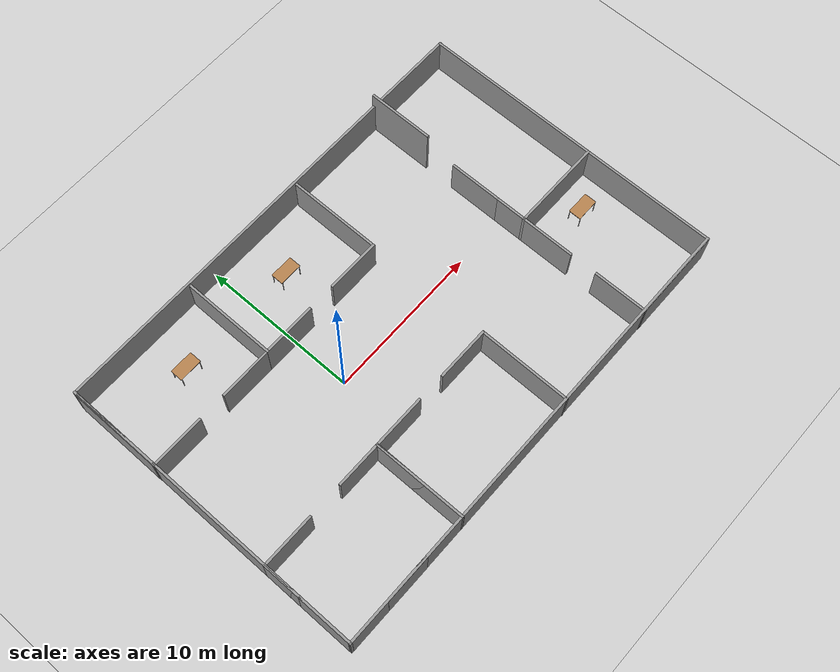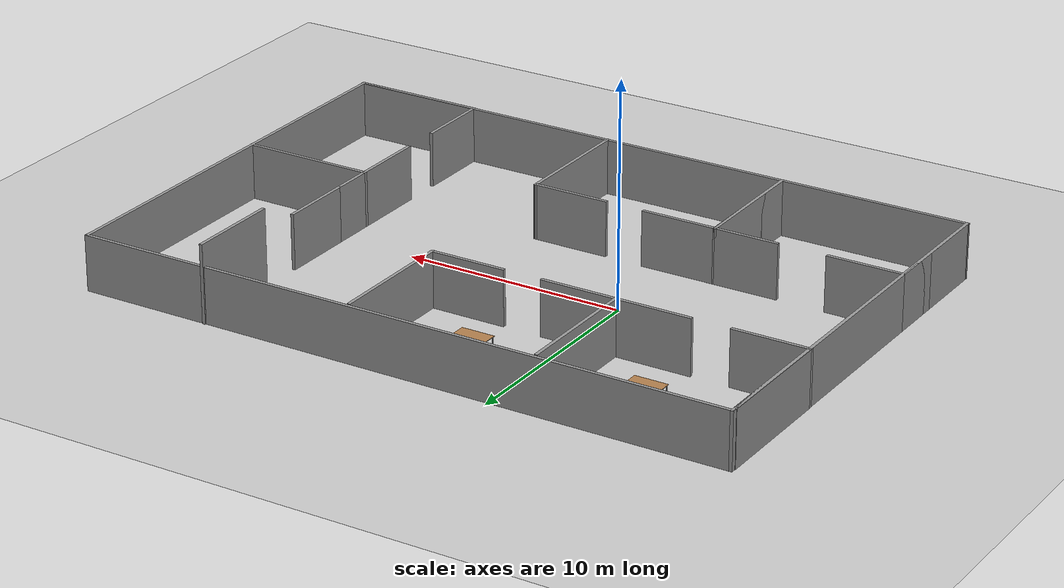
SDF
<sdf version="1.6">
 <world name="default">
  <light name="sun" type="directional">
   <pose>0 0 10 0 -0 0</pose>
   <diffuse>0.8 0.8 0.8 1</diffuse>
   <specular>0.2 0.2 0.2 1</specular>
   <attenuation>
    <range>1000</range>
    <constant>0.9</constant>
    <linear>0.01</linear>
    <quadratic>0.001</quadratic>
   </attenuation>
   <direction>-0.5 0.1 -0.9</direction>
  </light>
  <model name="ground_plane">
   <static>1</static>
   <link name="link">
    <collision name="collision">
     <geometry><plane><normal>0 0 1</normal><size>100 100</size></plane></geometry>
     <surface>
      <contact><collide_bitmask>65535</collide_bitmask></contact>
      <friction><ode><mu>100</mu><mu2>50</mu2></ode></friction>
     </surface>
    </collision>
    <visual name="visual">
     <cast_shadows>0</cast_shadows>
     <geometry><plane><normal>0 0 1</normal><size>100 100</size></plane></geometry>
     <material>
      <script><uri>file://media/materials/scripts/gazebo.material</uri><name>Gazebo/Grey</name></script>
     </material>
    </visual>
   </link>
  </model>
  <gravity>0 0 -9.8</gravity>
  <magnetic_field>6e-06 2.3e-05 -4.2e-05</magnetic_field>
  <atmosphere type="adiabatic"/>
  <physics name="default_physics" default="0" type="ode">
   <max_step_size>0.001</max_step_size>
   <real_time_factor>1</real_time_factor>
   <real_time_update_rate>1000</real_time_update_rate>
  </physics>
  <scene><ambient>0.4 0.4 0.4 1</ambient><background>0.7 0.7 0.7 1</background><shadows>1</shadows></scene>
  <audio><device>default</device></audio>
  <spherical_coordinates>
   <surface_model>EARTH_WGS84</surface_model>
   <latitude_deg>0</latitude_deg>
   <longitude_deg>0</longitude_deg>
   <elevation>0</elevation>
   <heading_deg>0</heading_deg>
  </spherical_coordinates>
  <model name="test">
   <pose>4.39989 -0.195401 0 0 -0 0</pose>
   <link name="Wall_0">
    <collision name="Wall_0_Collision">
     <geometry><box><size>30 0.15 2.5</size></box></geometry>
     <pose>0 0 1.25 0 -0 0</pose>
    </collision>
    <visual name="Wall_0_Visual">
     <pose>0 0 1.25 0 -0 0</pose>
     <geometry><box><size>30 0.15 2.5</size></box></geometry>
     <material>
      <script><uri>file://media/materials/scripts/gazebo.material</uri><name>Gazebo/Grey</name></script>
      <ambient>1 1 1 1</ambient>
     </material>
     <meta><layer>0</layer></meta>
    </visual>
    <pose>0 -9.95253 0 0 -0 0.001541</pose>
   </link>
   <link name="Wall_11">
    <collision name="Wall_11_Collision">
     <geometry><box><size>6 0.15 2.5</size></box></geometry>
     <pose>0 0 1.25 0 -0 0</pose>
    </collision>
    <visual name="Wall_11_Visual">
     <pose>0 0 1.25 0 -0 0</pose>
     <geometry><box><size>6 0.15 2.5</size></box></geometry>
     <material>
      <script><uri>file://media/materials/scripts/gazebo.material</uri><name>Gazebo/Grey</name></script>
      <ambient>1 1 1 1</ambient>
     </material>
     <meta><layer>0</layer></meta>
    </visual>
    <pose>-14.925 -7.05053 0 0 -0 1.5708</pose>
   </link>
   <link name="Wall_12">
    <collision name="Wall_12_Collision">
     <geometry><box><size>3.5 0.15 2.5</size></box></geometry>
     <pose>0 0 1.25 0 -0 0</pose>
    </collision>
    <visual name="Wall_12_Visual">
     <pose>0 0 1.25 0 -0 0</pose>
     <geometry><box><size>3.5 0.15 2.5</size></box></geometry>
     <material>
      <script><uri>file://media/materials/scripts/gazebo.material</uri><name>Gazebo/Grey</name></script>
      <ambient>1 1 1 1</ambient>
     </material>
     <meta><layer>0</layer></meta>
    </visual>
    <pose>-13.25 -4.12553 0 0 -0 0</pose>
   </link>
   <link name="Wall_14">
    <collision name="Wall_14_Collision">
     <geometry><box><size>3 0.15 2.5</size></box></geometry>
     <pose>0 0 1.25 0 -0 0</pose>
    </collision>
    <visual name="Wall_14_Visual">
     <pose>0 0 1.25 0 -0 0</pose>
     <geometry><box><size>3 0.15 2.5</size></box></geometry>
     <material>
      <script><uri>file://media/materials/scripts/gazebo.material</uri><name>Gazebo/Grey</name></script>
      <ambient>1 1 1 1</ambient>
     </material>
     <meta><layer>0</layer></meta>
    </visual>
    <pose>-10.65 -9.97553 0 0 -0 0</pose>
   </link>
   <link name="Wall_16">
    <collision name="Wall_16_Collision">
     <geometry><box><size>3 0.15 2.5</size></box></geometry>
     <pose>0 0 1.25 0 -0 0</pose>
    </collision>
    <visual name="Wall_16_Visual">
     <pose>0 0 1.25 0 -0 0</pose>
     <geometry><box><size>3 0.15 2.5</size></box></geometry>
     <material>
      <script><uri>file://media/materials/scripts/gazebo.material</uri><name>Gazebo/Grey</name></script>
      <ambient>1 1 1 1</ambient>
     </material>
     <meta><layer>0</layer></meta>
    </visual>
    <pose>-7.8263 -4.12553 0 0 -0 0</pose>
   </link>
   <link name="Wall_17">
    <collision name="Wall_17_Collision">
     <geometry><box><size>6.00006 0.15 2.5</size></box></geometry>
     <pose>0 0 1.25 0 -0 0</pose>
    </collision>
    <visual name="Wall_17_Visual">
     <pose>0 0 1.25 0 -0 0</pose>
     <geometry><box><size>6.00006 0.15 2.5</size></box></geometry>
     <material>
      <script><uri>file://media/materials/scripts/gazebo.material</uri><name>Gazebo/Grey</name></script>
      <ambient>1 1 1 1</ambient>
     </material>
     <meta><layer>0</layer></meta>
    </visual>
    <pose>-6.38815 -7.05053 0 0 -0 -1.5663</pose>
   </link>
   <link name="Wall_18">
    <collision name="Wall_18_Collision">
     <geometry><box><size>6.00006 0.15 2.5</size></box></geometry>
     <pose>0 0 1.25 0 -0 0</pose>
    </collision>
    <visual name="Wall_18_Visual">
     <pose>0 0 1.25 0 -0 0</pose>
     <geometry><box><size>6.00006 0.15 2.5</size></box></geometry>
     <material>
      <script><uri>file://media/materials/scripts/gazebo.material</uri><name>Gazebo/Grey</name></script>
      <ambient>1 1 1 1</ambient>
     </material>
     <meta><layer>0</layer></meta>
    </visual>
    <pose>-6.38815 -7.05053 0 0 -0 1.57529</pose>
   </link>
   <link name="Wall_19">
    <collision name="Wall_19_Collision">
     <geometry><box><size>3.5 0.15 2.5</size></box></geometry>
     <pose>0 0 1.25 0 -0 0</pose>
    </collision>
    <visual name="Wall_19_Visual">
     <pose>0 0 1.25 0 -0 0</pose>
     <geometry><box><size>3.5 0.15 2.5</size></box></geometry>
     <material>
      <script><uri>file://media/materials/scripts/gazebo.material</uri><name>Gazebo/Grey</name></script>
      <ambient>1 1 1 1</ambient>
     </material>
     <meta><layer>0</layer></meta>
    </visual>
    <pose>-4.7263 -4.12553 0 0 -0 0</pose>
   </link>
   <link name="Wall_2">
    <collision name="Wall_2_Collision">
     <geometry><box><size>20.0465 0.15 2.5</size></box></geometry>
     <pose>0 0 1.25 0 -0 0</pose>
    </collision>
    <visual name="Wall_2_Visual">
     <pose>0 0 1.25 0 -0 0</pose>
     <geometry><box><size>20.0465 0.15 2.5</size></box></geometry>
     <material>
      <script><uri>file://media/materials/scripts/gazebo.material</uri><name>Gazebo/Grey</name></script>
      <ambient>1 1 1 1</ambient>
     </material>
     <meta><layer>0</layer></meta>
    </visual>
    <pose>-14.925 -0.027533 0 0 -0 1.5708</pose>
   </link>
   <link name="Wall_23">
    <collision name="Wall_23_Collision">
     <geometry><box><size>3.5 0.15 2.5</size></box></geometry>
     <pose>0 0 1.25 0 -0 0</pose>
    </collision>
    <visual name="Wall_23_Visual">
     <pose>0 0 1.25 0 -0 0</pose>
     <geometry><box><size>3.5 0.15 2.5</size></box></geometry>
     <material>
      <script><uri>file://media/materials/scripts/gazebo.material</uri><name>Gazebo/Grey</name></script>
      <ambient>1 1 1 1</ambient>
     </material>
     <meta><layer>0</layer></meta>
    </visual>
    <pose>0.5 -4.15183 0 0 -0 0</pose>
   </link>
   <link name="Wall_24">
    <collision name="Wall_24_Collision">
     <geometry><box><size>5.97394 0.15 2.5</size></box></geometry>
     <pose>0 0 1.25 0 -0 0</pose>
    </collision>
    <visual name="Wall_24_Visual">
     <pose>0 0 1.25 0 -0 0</pose>
     <geometry><box><size>5.97394 0.15 2.5</size></box></geometry>
     <material>
      <script><uri>file://media/materials/scripts/gazebo.material</uri><name>Gazebo/Grey</name></script>
      <ambient>1 1 1 1</ambient>
     </material>
     <meta><layer>0</layer></meta>
    </visual>
    <pose>2.18815 -7.06368 0 0 -0 -1.57531</pose>
   </link>
   <link name="Wall_26">
    <collision name="Wall_26_Collision">
     <geometry><box><size>6 0.15 2.5</size></box></geometry>
     <pose>0 0 1.25 0 -0 0</pose>
    </collision>
    <visual name="Wall_26_Visual">
     <pose>0 0 1.25 0 -0 0</pose>
     <geometry><box><size>6 0.15 2.5</size></box></geometry>
     <material>
      <script><uri>file://media/materials/scripts/gazebo.material</uri><name>Gazebo/Grey</name></script>
      <ambient>1 1 1 1</ambient>
     </material>
     <meta><layer>0</layer></meta>
    </visual>
    <pose>11.9832 -9.96868 0 0 -0 3.14159</pose>
   </link>
   <link name="Wall_27">
    <collision name="Wall_27_Collision">
     <geometry><box><size>3.5 0.15 2.5</size></box></geometry>
     <pose>0 0 1.25 0 -0 0</pose>
    </collision>
    <visual name="Wall_27_Visual">
     <pose>0 0 1.25 0 -0 0</pose>
     <geometry><box><size>3.5 0.15 2.5</size></box></geometry>
     <material>
      <script><uri>file://media/materials/scripts/gazebo.material</uri><name>Gazebo/Grey</name></script>
      <ambient>1 1 1 1</ambient>
     </material>
     <meta><layer>0</layer></meta>
    </visual>
    <pose>9.05823 -8.29368 0 0 -0 1.5708</pose>
   </link>
   <link name="Wall_29">
    <collision name="Wall_29_Collision">
     <geometry><box><size>3.5 0.15 2.5</size></box></geometry>
     <pose>0 0 1.25 0 -0 0</pose>
    </collision>
    <visual name="Wall_29_Visual">
     <pose>0 0 1.25 0 -0 0</pose>
     <geometry><box><size>3.5 0.15 2.5</size></box></geometry>
     <material>
      <script><uri>file://media/materials/scripts/gazebo.material</uri><name>Gazebo/Grey</name></script>
      <ambient>1 1 1 1</ambient>
     </material>
     <meta><layer>0</layer></meta>
    </visual>
    <pose>9.05823 -3.09368 0 0 -0 1.5708</pose>
   </link>
   <link name="Wall_30">
    <collision name="Wall_30_Collision">
     <geometry><box><size>6 0.15 2.5</size></box></geometry>
     <pose>0 0 1.25 0 -0 0</pose>
    </collision>
    <visual name="Wall_30_Visual">
     <pose>0 0 1.25 0 -0 0</pose>
     <geometry><box><size>6 0.15 2.5</size></box></geometry>
     <material>
      <script><uri>file://media/materials/scripts/gazebo.material</uri><name>Gazebo/Grey</name></script>
      <ambient>1 1 1 1</ambient>
     </material>
     <meta><layer>0</layer></meta>
    </visual>
    <pose>11.9832 -1.41868 0 0 -0 0</pose>
   </link>
   <link name="Wall_32">
    <collision name="Wall_32_Collision">
     <geometry><box><size>2 0.15 2.5</size></box></geometry>
     <pose>0 0 1.25 0 -0 0</pose>
    </collision>
    <visual name="Wall_32_Visual">
     <pose>0 0 1.25 0 -0 0</pose>
     <geometry><box><size>2 0.15 2.5</size></box></geometry>
     <material>
      <script><uri>file://media/materials/scripts/gazebo.material</uri><name>Gazebo/Grey</name></script>
      <ambient>1 1 1 1</ambient>
     </material>
     <meta><layer>0</layer></meta>
    </visual>
    <pose>9.05823 -0.493677 0 0 -0 1.5708</pose>
   </link>
   <link name="Wall_34">
    <collision name="Wall_34_Collision">
     <geometry><box><size>3.5 0.15 2.5</size></box></geometry>
     <pose>0 0 1.25 0 -0 0</pose>
    </collision>
    <visual name="Wall_34_Visual">
     <pose>0 0 1.25 0 -0 0</pose>
     <geometry><box><size>3.5 0.15 2.5</size></box></geometry>
     <material>
      <script><uri>file://media/materials/scripts/gazebo.material</uri><name>Gazebo/Grey</name></script>
      <ambient>1 1 1 1</ambient>
     </material>
     <meta><layer>0</layer></meta>
    </visual>
    <pose>9.05823 2.10632 0 0 -0 1.5708</pose>
   </link>
   <link name="Wall_39">
    <collision name="Wall_39_Collision">
     <geometry><box><size>4.25 0.15 3.5</size></box></geometry>
     <pose>0 0 1.75 0 -0 0</pose>
    </collision>
    <visual name="Wall_39_Visual">
     <pose>0 0 1.75 0 -0 0</pose>
     <geometry><box><size>4.25 0.15 3.5</size></box></geometry>
     <material>
      <script><uri>file://media/materials/scripts/gazebo.material</uri><name>Gazebo/Grey</name></script>
      <ambient>1 1 1 1</ambient>
     </material>
     <meta><layer>0</layer></meta>
    </visual>
    <pose>9.05862 7.92596 0 0 -0 1.5708</pose>
   </link>
   <link name="Wall_4">
    <collision name="Wall_4_Collision">
     <geometry><box><size>30 0.15 2.5</size></box></geometry>
     <pose>0 0 1.25 0 -0 0</pose>
    </collision>
    <visual name="Wall_4_Visual">
     <pose>0 0 1.25 0 -0 0</pose>
     <geometry><box><size>30 0.15 2.5</size></box></geometry>
     <material>
      <script><uri>file://media/materials/scripts/gazebo.material</uri><name>Gazebo/Grey</name></script>
      <ambient>1 1 1 1</ambient>
     </material>
     <meta><layer>0</layer></meta>
    </visual>
    <pose>0 9.92047 0 0 -0 0</pose>
   </link>
   <link name="Wall_41">
    <collision name="Wall_41_Collision">
     <geometry><box><size>6 0.15 2.5</size></box></geometry>
     <pose>0 0 1.25 0 -0 0</pose>
    </collision>
    <visual name="Wall_41_Visual">
     <pose>0 0 1.25 0 -0 0</pose>
     <geometry><box><size>6 0.15 2.5</size></box></geometry>
     <material>
      <script><uri>file://media/materials/scripts/gazebo.material</uri><name>Gazebo/Grey</name></script>
      <ambient>1 1 1 1</ambient>
     </material>
     <meta><layer>0</layer></meta>
    </visual>
    <pose>-14.925 6.99547 0 0 -0 -1.5708</pose>
   </link>
   <link name="Wall_6">
    <collision name="Wall_6_Collision">
     <geometry><box><size>20 0.15 2.5</size></box></geometry>
     <pose>0 0 1.25 0 -0 0</pose>
    </collision>
    <visual name="Wall_6_Visual">
     <pose>0 0 1.25 0 -0 0</pose>
     <geometry><box><size>20 0.15 2.5</size></box></geometry>
     <material>
      <script><uri>file://media/materials/scripts/gazebo.material</uri><name>Gazebo/Grey</name></script>
      <ambient>1 1 1 1</ambient>
     </material>
     <meta><layer>0</layer></meta>
    </visual>
    <pose>14.9082 -0.043677 0 0 -0 1.5708</pose>
   </link>
   <link name="Wall_9">
    <collision name="Wall_9_Collision">
     <geometry><box><size>2.45446 0.15 2.5</size></box></geometry>
     <pose>0 0 1.25 0 -0 0</pose>
    </collision>
    <visual name="Wall_9_Visual">
     <pose>0 0 1.25 0 -0 0</pose>
     <geometry><box><size>2.45446 0.15 2.5</size></box></geometry>
     <material>
      <script><uri>file://media/materials/scripts/gazebo.material</uri><name>Gazebo/Grey</name></script>
      <ambient>1 1 1 1</ambient>
     </material>
     <meta><layer>0</layer></meta>
    </visual>
    <pose>-14.925 -5.27753 0 0 -0 -1.5708</pose>
   </link>
   <static>1</static>
  </model>
  <model name="test3">
   <pose>-1.996 6.58709 0 0 -0 0</pose>
   <link name="Wall_183">
    <collision name="Wall_183_Collision">
     <geometry><box><size>6 0.15 2.5</size></box></geometry>
     <pose>0 0 1.25 0 -0 0</pose>
    </collision>
    <visual name="Wall_183_Visual">
     <pose>0 0 1.25 0 -0 0</pose>
     <geometry><box><size>6 0.15 2.5</size></box></geometry>
     <material>
      <script><uri>file://media/materials/scripts/gazebo.material</uri><name>Gazebo/Grey</name></script>
      <ambient>1 1 1 1</ambient>
     </material>
     <meta><layer>0</layer></meta>
    </visual>
    <pose>-8.54997 8.6e-05 0 0 -0 1.57079</pose>
   </link>
   <link name="Wall_185">
    <collision name="Wall_185_Collision">
     <geometry><box><size>3.5 0.15 2.5</size></box></geometry>
     <pose>0 0 1.25 0 -0 0</pose>
    </collision>
    <visual name="Wall_185_Visual">
     <pose>0 0 1.25 0 -0 0</pose>
     <geometry><box><size>3.5 0.15 2.5</size></box></geometry>
     <material>
      <script><uri>file://media/materials/scripts/gazebo.material</uri><name>Gazebo/Grey</name></script>
      <ambient>1 1 1 1</ambient>
     </material>
     <meta><layer>0</layer></meta>
    </visual>
    <pose>-6.875 -2.92509 0 0 -0 0</pose>
   </link>
   <link name="Wall_189">
    <collision name="Wall_189_Collision">
     <geometry><box><size>3.5 0.15 2.5</size></box></geometry>
     <pose>0 0 1.25 0 -0 0</pose>
    </collision>
    <visual name="Wall_189_Visual">
     <pose>0 0 1.25 0 -0 0</pose>
     <geometry><box><size>3.5 0.15 2.5</size></box></geometry>
     <material>
      <script><uri>file://media/materials/scripts/gazebo.material</uri><name>Gazebo/Grey</name></script>
      <ambient>1 1 1 1</ambient>
     </material>
     <meta><layer>0</layer></meta>
    </visual>
    <pose>-1.675 -2.92509 0 0 -0 0</pose>
   </link>
   <link name="Wall_191">
    <collision name="Wall_191_Collision">
     <geometry><box><size>6 0.15 2.5</size></box></geometry>
     <pose>0 0 1.25 0 -0 0</pose>
    </collision>
    <visual name="Wall_191_Visual">
     <pose>0 0 1.25 0 -0 0</pose>
     <geometry><box><size>6 0.15 2.5</size></box></geometry>
     <material>
      <script><uri>file://media/materials/scripts/gazebo.material</uri><name>Gazebo/Grey</name></script>
      <ambient>1 1 1 1</ambient>
     </material>
     <meta><layer>0</layer></meta>
    </visual>
    <pose>0 -8.6e-05 0 0 -0 1.5708</pose>
   </link>
   <link name="Wall_193">
    <collision name="Wall_193_Collision">
     <geometry><box><size>3.5 0.15 2.5</size></box></geometry>
     <pose>0 0 1.25 0 -0 0</pose>
    </collision>
    <visual name="Wall_193_Visual">
     <pose>0 0 1.25 0 -0 0</pose>
     <geometry><box><size>3.5 0.15 2.5</size></box></geometry>
     <material>
      <script><uri>file://media/materials/scripts/gazebo.material</uri><name>Gazebo/Grey</name></script>
      <ambient>1 1 1 1</ambient>
     </material>
     <meta><layer>0</layer></meta>
    </visual>
    <pose>1.675 -2.92509 0 0 -0 0</pose>
   </link>
   <link name="Wall_197">
    <collision name="Wall_197_Collision">
     <geometry><box><size>3.5 0.15 2.5</size></box></geometry>
     <pose>0 0 1.25 0 -0 0</pose>
    </collision>
    <visual name="Wall_197_Visual">
     <pose>0 0 1.25 0 -0 0</pose>
     <geometry><box><size>3.5 0.15 2.5</size></box></geometry>
     <material>
      <script><uri>file://media/materials/scripts/gazebo.material</uri><name>Gazebo/Grey</name></script>
      <ambient>1 1 1 1</ambient>
     </material>
     <meta><layer>0</layer></meta>
    </visual>
    <pose>6.875 -2.92509 0 0 -0 0</pose>
   </link>
   <link name="Wall_199">
    <collision name="Wall_199_Collision">
     <geometry><box><size>6 0.15 2.5</size></box></geometry>
     <pose>0 0 1.25 0 -0 0</pose>
    </collision>
    <visual name="Wall_199_Visual">
     <pose>0 0 1.25 0 -0 0</pose>
     <geometry><box><size>6 0.15 2.5</size></box></geometry>
     <material>
      <script><uri>file://media/materials/scripts/gazebo.material</uri><name>Gazebo/Grey</name></script>
      <ambient>1 1 1 1</ambient>
     </material>
     <meta><layer>0</layer></meta>
    </visual>
    <pose>8.55 -8.6e-05 0 0 -0 1.5708</pose>
   </link>
   <static>1</static>
  </model>
  <model name="final">
   <model name="table">
    <static>1</static>
    <link name="link">
     <collision name="surface">
      <pose>0 0 1 0 -0 0</pose>
      <geometry><box><size>1.5 0.8 0.03</size></box></geometry>
      <surface><friction><ode><mu>0.6</mu><mu2>0.6</mu2></ode></friction></surface>
     </collision>
     <visual name="visual1">
      <pose>0 0 1 0 -0 0</pose>
      <geometry><box><size>1.5 0.8 0.03</size></box></geometry>
      <material>
       <script><uri>file://media/materials/scripts/gazebo.material</uri><name>Gazebo/Wood</name></script>
      </material>
     </visual>
     <collision name="front_left_leg">
      <pose>0.68 0.38 0.5 0 -0 0</pose>
      <geometry><cylinder><radius>0.02</radius><length>1</length></cylinder></geometry>
     </collision>
     <visual name="front_left_leg">
      <pose>0.68 0.38 0.5 0 -0 0</pose>
      <geometry><cylinder><radius>0.02</radius><length>1</length></cylinder></geometry>
      <material>
       <script><uri>file://media/materials/scripts/gazebo.material</uri><name>Gazebo/Grey</name></script>
      </material>
     </visual>
     <collision name="front_right_leg">
      <pose>0.68 -0.38 0.5 0 -0 0</pose>
      <geometry><cylinder><radius>0.02</radius><length>1</length></cylinder></geometry>
     </collision>
     <visual name="front_right_leg">
      <pose>0.68 -0.38 0.5 0 -0 0</pose>
      <geometry><cylinder><radius>0.02</radius><length>1</length></cylinder></geometry>
      <material>
       <script><uri>file://media/materials/scripts/gazebo.material</uri><name>Gazebo/Grey</name></script>
      </material>
     </visual>
     <collision name="back_right_leg">
      <pose>-0.68 -0.38 0.5 0 -0 0</pose>
      <geometry><cylinder><radius>0.02</radius><length>1</length></cylinder></geometry>
     </collision>
     <visual name="back_right_leg">
      <pose>-0.68 -0.38 0.5 0 -0 0</pose>
      <geometry><cylinder><radius>0.02</radius><length>1</length></cylinder></geometry>
      <material>
       <script><uri>file://media/materials/scripts/gazebo.material</uri><name>Gazebo/Grey</name></script>
      </material>
     </visual>
     <collision name="back_left_leg">
      <pose>-0.68 0.38 0.5 0 -0 0</pose>
      <geometry><cylinder><radius>0.02</radius><length>1</length></cylinder></geometry>
     </collision>
     <visual name="back_left_leg">
      <pose>-0.68 0.38 0.5 0 -0 0</pose>
      <geometry><cylinder><radius>0.02</radius><length>1</length></cylinder></geometry>
      <material>
       <script><uri>file://media/materials/scripts/gazebo.material</uri><name>Gazebo/Grey</name></script>
      </material>
     </visual>
    </link>
    <pose>-2.1733 3.32236 0 0 -0 0</pose>
   </model>
   <model name="table_0">
    <static>1</static>
    <link name="link">
     <collision name="surface">
      <pose>0 0 1 0 -0 0</pose>
      <geometry><box><size>1.5 0.8 0.03</size></box></geometry>
      <surface><friction><ode><mu>0.6</mu><mu2>0.6</mu2></ode></friction></surface>
     </collision>
     <visual name="visual1">
      <pose>0 0 1 0 -0 0</pose>
      <geometry><box><size>1.5 0.8 0.03</size></box></geometry>
      <material>
       <script><uri>file://media/materials/scripts/gazebo.material</uri><name>Gazebo/Wood</name></script>
      </material>
     </visual>
     <collision name="front_left_leg">
      <pose>0.68 0.38 0.5 0 -0 0</pose>
      <geometry><cylinder><radius>0.02</radius><length>1</length></cylinder></geometry>
     </collision>
     <visual name="front_left_leg">
      <pose>0.68 0.38 0.5 0 -0 0</pose>
      <geometry><cylinder><radius>0.02</radius><length>1</length></cylinder></geometry>
      <material>
       <script><uri>file://media/materials/scripts/gazebo.material</uri><name>Gazebo/Grey</name></script>
      </material>
     </visual>
     <collision name="front_right_leg">
      <pose>0.68 -0.38 0.5 0 -0 0</pose>
      <geometry><cylinder><radius>0.02</radius><length>1</length></cylinder></geometry>
     </collision>
     <visual name="front_right_leg">
      <pose>0.68 -0.38 0.5 0 -0 0</pose>
      <geometry><cylinder><radius>0.02</radius><length>1</length></cylinder></geometry>
      <material>
       <script><uri>file://media/materials/scripts/gazebo.material</uri><name>Gazebo/Grey</name></script>
      </material>
     </visual>
     <collision name="back_right_leg">
      <pose>-0.68 -0.38 0.5 0 -0 0</pose>
      <geometry><cylinder><radius>0.02</radius><length>1</length></cylinder></geometry>
     </collision>
     <visual name="back_right_leg">
      <pose>-0.68 -0.38 0.5 0 -0 0</pose>
      <geometry><cylinder><radius>0.02</radius><length>1</length></cylinder></geometry>
      <material>
       <script><uri>file://media/materials/scripts/gazebo.material</uri><name>Gazebo/Grey</name></script>
      </material>
     </visual>
     <collision name="back_left_leg">
      <pose>-0.68 0.38 0.5 0 -0 0</pose>
      <geometry><cylinder><radius>0.02</radius><length>1</length></cylinder></geometry>
     </collision>
     <visual name="back_left_leg">
      <pose>-0.68 0.38 0.5 0 -0 0</pose>
      <geometry><cylinder><radius>0.02</radius><length>1</length></cylinder></geometry>
      <material>
       <script><uri>file://media/materials/scripts/gazebo.material</uri><name>Gazebo/Grey</name></script>
      </material>
     </visual>
    </link>
    <pose>-10.0657 3.42241 0 0 -0 0</pose>
   </model>
   <model name="table_1">
    <static>1</static>
    <link name="link">
     <collision name="surface">
      <pose>0 0 1 0 -0 0</pose>
      <geometry><box><size>1.5 0.8 0.03</size></box></geometry>
      <surface><friction><ode><mu>0.6</mu><mu2>0.6</mu2></ode></friction></surface>
     </collision>
     <visual name="visual1">
      <pose>0 0 1 0 -0 0</pose>
      <geometry><box><size>1.5 0.8 0.03</size></box></geometry>
      <material>
       <script><uri>file://media/materials/scripts/gazebo.material</uri><name>Gazebo/Wood</name></script>
      </material>
     </visual>
     <collision name="front_left_leg">
      <pose>0.68 0.38 0.5 0 -0 0</pose>
      <geometry><cylinder><radius>0.02</radius><length>1</length></cylinder></geometry>
     </collision>
     <visual name="front_left_leg">
      <pose>0.68 0.38 0.5 0 -0 0</pose>
      <geometry><cylinder><radius>0.02</radius><length>1</length></cylinder></geometry>
      <material>
       <script><uri>file://media/materials/scripts/gazebo.material</uri><name>Gazebo/Grey</name></script>
      </material>
     </visual>
     <collision name="front_right_leg">
      <pose>0.68 -0.38 0.5 0 -0 0</pose>
      <geometry><cylinder><radius>0.02</radius><length>1</length></cylinder></geometry>
     </collision>
     <visual name="front_right_leg">
      <pose>0.68 -0.38 0.5 0 -0 0</pose>
      <geometry><cylinder><radius>0.02</radius><length>1</length></cylinder></geometry>
      <material>
       <script><uri>file://media/materials/scripts/gazebo.material</uri><name>Gazebo/Grey</name></script>
      </material>
     </visual>
     <collision name="back_right_leg">
      <pose>-0.68 -0.38 0.5 0 -0 0</pose>
      <geometry><cylinder><radius>0.02</radius><length>1</length></cylinder></geometry>
     </collision>
     <visual name="back_right_leg">
      <pose>-0.68 -0.38 0.5 0 -0 0</pose>
      <geometry><cylinder><radius>0.02</radius><length>1</length></cylinder></geometry>
      <material>
       <script><uri>file://media/materials/scripts/gazebo.material</uri><name>Gazebo/Grey</name></script>
      </material>
     </visual>
     <collision name="back_left_leg">
      <pose>-0.68 0.38 0.5 0 -0 0</pose>
      <geometry><cylinder><radius>0.02</radius><length>1</length></cylinder></geometry>
     </collision>
     <visual name="back_left_leg">
      <pose>-0.68 0.38 0.5 0 -0 0</pose>
      <geometry><cylinder><radius>0.02</radius><length>1</length></cylinder></geometry>
      <material>
       <script><uri>file://media/materials/scripts/gazebo.material</uri><name>Gazebo/Grey</name></script>
      </material>
     </visual>
    </link>
    <pose>12.239 -6.74477 0 0 -0 0</pose>
   </model>
   <static>0</static>
   <pose>4.7819 3.49261 0 0 -0 0</pose>
  </model>
 </world>
</sdf>
